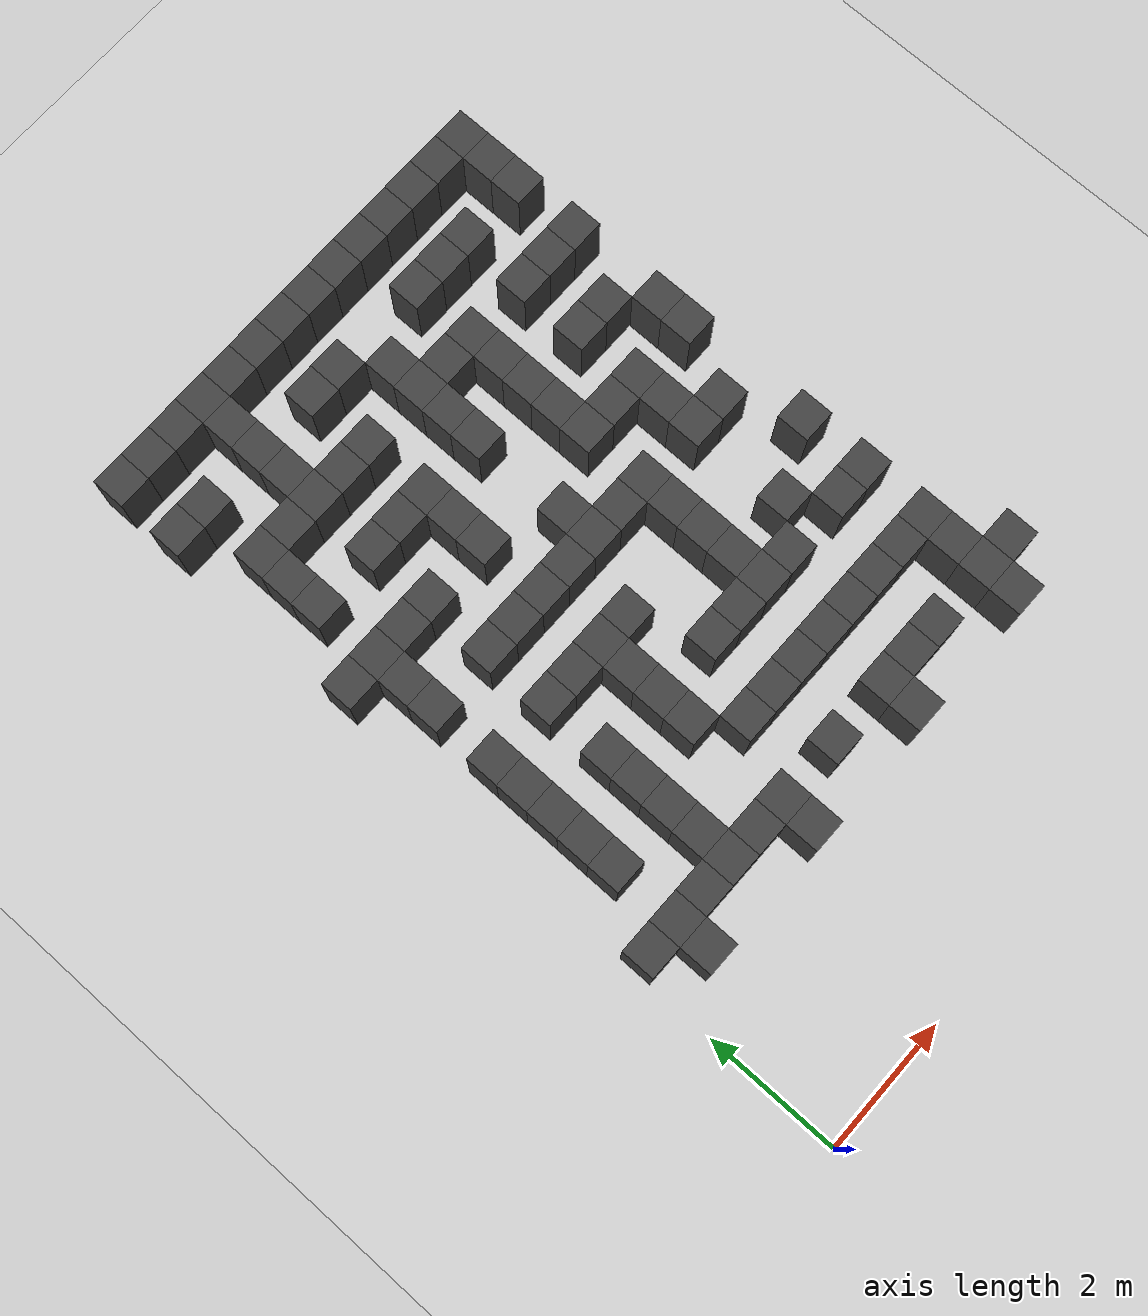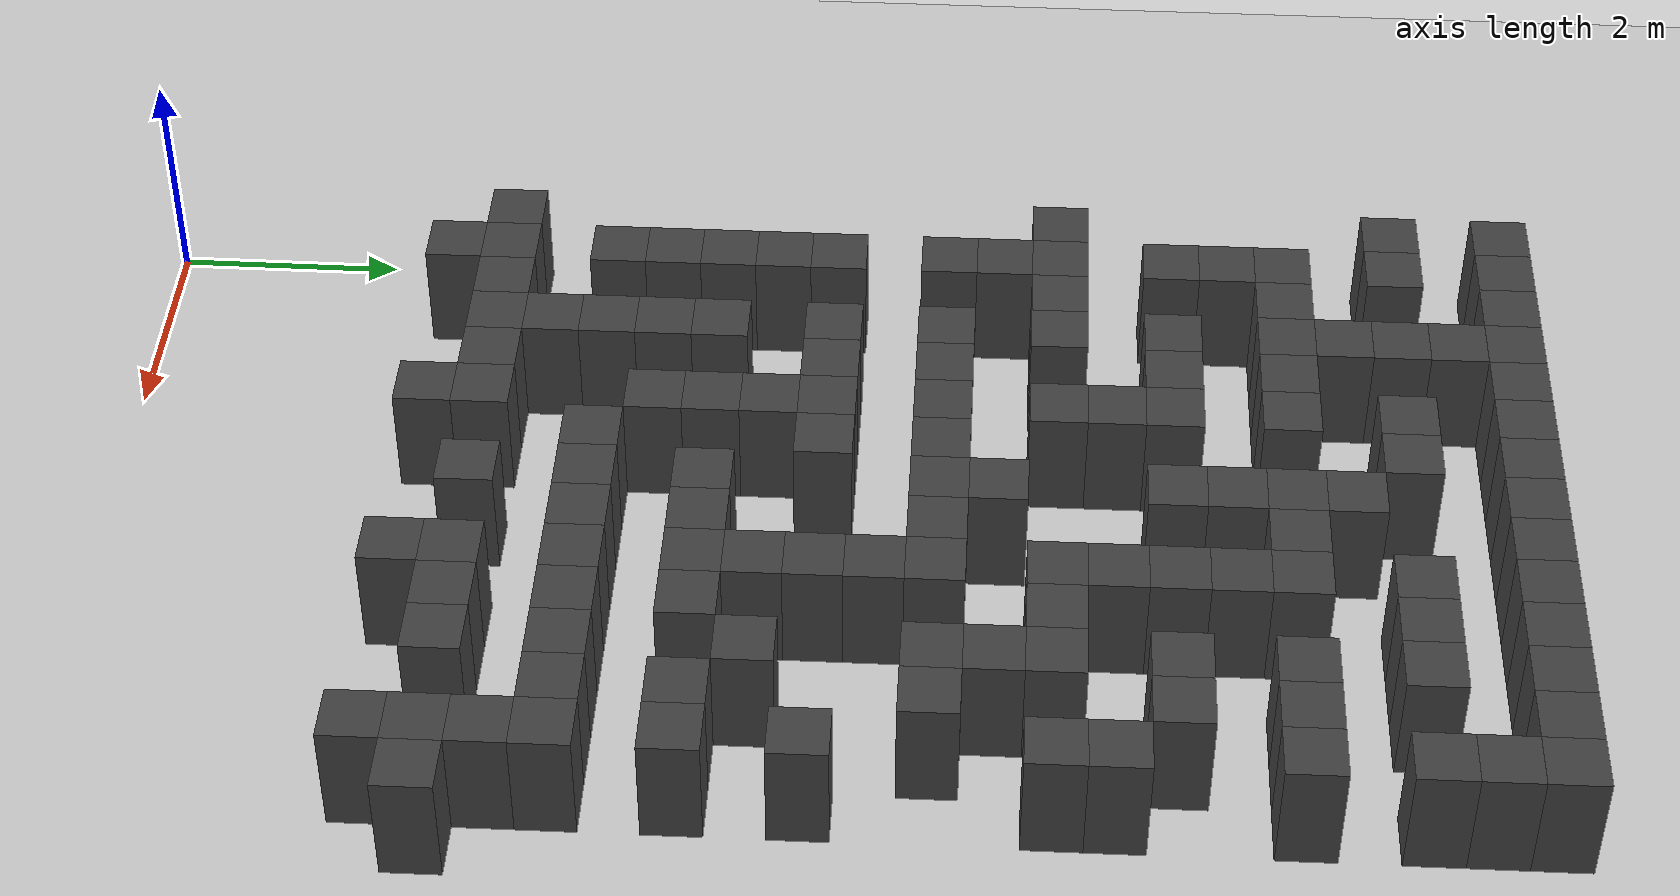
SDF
<sdf version="1.7">
 <world name="map_16884">
  <model name="ground_plane">
   <static>true</static>
   <link name="link">
    <collision name="collision">
     <geometry><plane><normal>0 0 1</normal><size>200 200</size></plane></geometry>
    </collision>
    <visual name="visual">
     <geometry><plane><normal>0 0 1</normal><size>200 200</size></plane></geometry>
     <material><ambient>0.8 0.8 0.8 1</ambient><diffuse>0.8 0.8 0.8 1</diffuse></material>
    </visual>
   </link>
  </model>
  <model name="maze_environment">
   <static>true</static>
   <link name="wall_25">
    <pose>0.250 12.250 0.500 0 0 0</pose>
    <collision name="col"><geometry><box><size>0.5 0.5 1.0</size></box></geometry></collision>
    <visual name="vis">
     <geometry><box><size>0.5 0.5 1.0</size></box></geometry>
     <material><ambient>0.15 0.15 0.15 1</ambient><diffuse>0.25 0.25 0.25 1</diffuse></material>
    </visual>
   </link>
   <link name="wall_26">
    <pose>0.750 12.250 0.500 0 0 0</pose>
    <collision name="col"><geometry><box><size>0.5 0.5 1.0</size></box></geometry></collision>
    <visual name="vis">
     <geometry><box><size>0.5 0.5 1.0</size></box></geometry>
     <material><ambient>0.15 0.15 0.15 1</ambient><diffuse>0.25 0.25 0.25 1</diffuse></material>
    </visual>
   </link>
   <link name="wall_27">
    <pose>1.250 12.250 0.500 0 0 0</pose>
    <collision name="col"><geometry><box><size>0.5 0.5 1.0</size></box></geometry></collision>
    <visual name="vis">
     <geometry><box><size>0.5 0.5 1.0</size></box></geometry>
     <material><ambient>0.15 0.15 0.15 1</ambient><diffuse>0.25 0.25 0.25 1</diffuse></material>
    </visual>
   </link>
   <link name="wall_28">
    <pose>1.750 12.250 0.500 0 0 0</pose>
    <collision name="col"><geometry><box><size>0.5 0.5 1.0</size></box></geometry></collision>
    <visual name="vis">
     <geometry><box><size>0.5 0.5 1.0</size></box></geometry>
     <material><ambient>0.15 0.15 0.15 1</ambient><diffuse>0.25 0.25 0.25 1</diffuse></material>
    </visual>
   </link>
   <link name="wall_29">
    <pose>2.250 12.250 0.500 0 0 0</pose>
    <collision name="col"><geometry><box><size>0.5 0.5 1.0</size></box></geometry></collision>
    <visual name="vis">
     <geometry><box><size>0.5 0.5 1.0</size></box></geometry>
     <material><ambient>0.15 0.15 0.15 1</ambient><diffuse>0.25 0.25 0.25 1</diffuse></material>
    </visual>
   </link>
   <link name="wall_30">
    <pose>2.750 12.250 0.500 0 0 0</pose>
    <collision name="col"><geometry><box><size>0.5 0.5 1.0</size></box></geometry></collision>
    <visual name="vis">
     <geometry><box><size>0.5 0.5 1.0</size></box></geometry>
     <material><ambient>0.15 0.15 0.15 1</ambient><diffuse>0.25 0.25 0.25 1</diffuse></material>
    </visual>
   </link>
   <link name="wall_31">
    <pose>3.250 12.250 0.500 0 0 0</pose>
    <collision name="col"><geometry><box><size>0.5 0.5 1.0</size></box></geometry></collision>
    <visual name="vis">
     <geometry><box><size>0.5 0.5 1.0</size></box></geometry>
     <material><ambient>0.15 0.15 0.15 1</ambient><diffuse>0.25 0.25 0.25 1</diffuse></material>
    </visual>
   </link>
   <link name="wall_32">
    <pose>3.750 12.250 0.500 0 0 0</pose>
    <collision name="col"><geometry><box><size>0.5 0.5 1.0</size></box></geometry></collision>
    <visual name="vis">
     <geometry><box><size>0.5 0.5 1.0</size></box></geometry>
     <material><ambient>0.15 0.15 0.15 1</ambient><diffuse>0.25 0.25 0.25 1</diffuse></material>
    </visual>
   </link>
   <link name="wall_33">
    <pose>4.250 12.250 0.500 0 0 0</pose>
    <collision name="col"><geometry><box><size>0.5 0.5 1.0</size></box></geometry></collision>
    <visual name="vis">
     <geometry><box><size>0.5 0.5 1.0</size></box></geometry>
     <material><ambient>0.15 0.15 0.15 1</ambient><diffuse>0.25 0.25 0.25 1</diffuse></material>
    </visual>
   </link>
   <link name="wall_34">
    <pose>4.750 12.250 0.500 0 0 0</pose>
    <collision name="col"><geometry><box><size>0.5 0.5 1.0</size></box></geometry></collision>
    <visual name="vis">
     <geometry><box><size>0.5 0.5 1.0</size></box></geometry>
     <material><ambient>0.15 0.15 0.15 1</ambient><diffuse>0.25 0.25 0.25 1</diffuse></material>
    </visual>
   </link>
   <link name="wall_35">
    <pose>5.250 12.250 0.500 0 0 0</pose>
    <collision name="col"><geometry><box><size>0.5 0.5 1.0</size></box></geometry></collision>
    <visual name="vis">
     <geometry><box><size>0.5 0.5 1.0</size></box></geometry>
     <material><ambient>0.15 0.15 0.15 1</ambient><diffuse>0.25 0.25 0.25 1</diffuse></material>
    </visual>
   </link>
   <link name="wall_36">
    <pose>5.750 12.250 0.500 0 0 0</pose>
    <collision name="col"><geometry><box><size>0.5 0.5 1.0</size></box></geometry></collision>
    <visual name="vis">
     <geometry><box><size>0.5 0.5 1.0</size></box></geometry>
     <material><ambient>0.15 0.15 0.15 1</ambient><diffuse>0.25 0.25 0.25 1</diffuse></material>
    </visual>
   </link>
   <link name="wall_37">
    <pose>6.250 12.250 0.500 0 0 0</pose>
    <collision name="col"><geometry><box><size>0.5 0.5 1.0</size></box></geometry></collision>
    <visual name="vis">
     <geometry><box><size>0.5 0.5 1.0</size></box></geometry>
     <material><ambient>0.15 0.15 0.15 1</ambient><diffuse>0.25 0.25 0.25 1</diffuse></material>
    </visual>
   </link>
   <link name="wall_38">
    <pose>6.750 12.250 0.500 0 0 0</pose>
    <collision name="col"><geometry><box><size>0.5 0.5 1.0</size></box></geometry></collision>
    <visual name="vis">
     <geometry><box><size>0.5 0.5 1.0</size></box></geometry>
     <material><ambient>0.15 0.15 0.15 1</ambient><diffuse>0.25 0.25 0.25 1</diffuse></material>
    </visual>
   </link>
   <link name="wall_53">
    <pose>1.750 11.750 0.500 0 0 0</pose>
    <collision name="col"><geometry><box><size>0.5 0.5 1.0</size></box></geometry></collision>
    <visual name="vis">
     <geometry><box><size>0.5 0.5 1.0</size></box></geometry>
     <material><ambient>0.15 0.15 0.15 1</ambient><diffuse>0.25 0.25 0.25 1</diffuse></material>
    </visual>
   </link>
   <link name="wall_54">
    <pose>6.750 11.750 0.500 0 0 0</pose>
    <collision name="col"><geometry><box><size>0.5 0.5 1.0</size></box></geometry></collision>
    <visual name="vis">
     <geometry><box><size>0.5 0.5 1.0</size></box></geometry>
     <material><ambient>0.15 0.15 0.15 1</ambient><diffuse>0.25 0.25 0.25 1</diffuse></material>
    </visual>
   </link>
   <link name="wall_77">
    <pose>0.250 11.250 0.500 0 0 0</pose>
    <collision name="col"><geometry><box><size>0.5 0.5 1.0</size></box></geometry></collision>
    <visual name="vis">
     <geometry><box><size>0.5 0.5 1.0</size></box></geometry>
     <material><ambient>0.15 0.15 0.15 1</ambient><diffuse>0.25 0.25 0.25 1</diffuse></material>
    </visual>
   </link>
   <link name="wall_78">
    <pose>0.750 11.250 0.500 0 0 0</pose>
    <collision name="col"><geometry><box><size>0.5 0.5 1.0</size></box></geometry></collision>
    <visual name="vis">
     <geometry><box><size>0.5 0.5 1.0</size></box></geometry>
     <material><ambient>0.15 0.15 0.15 1</ambient><diffuse>0.25 0.25 0.25 1</diffuse></material>
    </visual>
   </link>
   <link name="wall_79">
    <pose>1.750 11.250 0.500 0 0 0</pose>
    <collision name="col"><geometry><box><size>0.5 0.5 1.0</size></box></geometry></collision>
    <visual name="vis">
     <geometry><box><size>0.5 0.5 1.0</size></box></geometry>
     <material><ambient>0.15 0.15 0.15 1</ambient><diffuse>0.25 0.25 0.25 1</diffuse></material>
    </visual>
   </link>
   <link name="wall_80">
    <pose>2.750 11.250 0.500 0 0 0</pose>
    <collision name="col"><geometry><box><size>0.5 0.5 1.0</size></box></geometry></collision>
    <visual name="vis">
     <geometry><box><size>0.5 0.5 1.0</size></box></geometry>
     <material><ambient>0.15 0.15 0.15 1</ambient><diffuse>0.25 0.25 0.25 1</diffuse></material>
    </visual>
   </link>
   <link name="wall_81">
    <pose>3.250 11.250 0.500 0 0 0</pose>
    <collision name="col"><geometry><box><size>0.5 0.5 1.0</size></box></geometry></collision>
    <visual name="vis">
     <geometry><box><size>0.5 0.5 1.0</size></box></geometry>
     <material><ambient>0.15 0.15 0.15 1</ambient><diffuse>0.25 0.25 0.25 1</diffuse></material>
    </visual>
   </link>
   <link name="wall_82">
    <pose>4.750 11.250 0.500 0 0 0</pose>
    <collision name="col"><geometry><box><size>0.5 0.5 1.0</size></box></geometry></collision>
    <visual name="vis">
     <geometry><box><size>0.5 0.5 1.0</size></box></geometry>
     <material><ambient>0.15 0.15 0.15 1</ambient><diffuse>0.25 0.25 0.25 1</diffuse></material>
    </visual>
   </link>
   <link name="wall_83">
    <pose>5.250 11.250 0.500 0 0 0</pose>
    <collision name="col"><geometry><box><size>0.5 0.5 1.0</size></box></geometry></collision>
    <visual name="vis">
     <geometry><box><size>0.5 0.5 1.0</size></box></geometry>
     <material><ambient>0.15 0.15 0.15 1</ambient><diffuse>0.25 0.25 0.25 1</diffuse></material>
    </visual>
   </link>
   <link name="wall_84">
    <pose>5.750 11.250 0.500 0 0 0</pose>
    <collision name="col"><geometry><box><size>0.5 0.5 1.0</size></box></geometry></collision>
    <visual name="vis">
     <geometry><box><size>0.5 0.5 1.0</size></box></geometry>
     <material><ambient>0.15 0.15 0.15 1</ambient><diffuse>0.25 0.25 0.25 1</diffuse></material>
    </visual>
   </link>
   <link name="wall_85">
    <pose>6.750 11.250 0.500 0 0 0</pose>
    <collision name="col"><geometry><box><size>0.5 0.5 1.0</size></box></geometry></collision>
    <visual name="vis">
     <geometry><box><size>0.5 0.5 1.0</size></box></geometry>
     <material><ambient>0.15 0.15 0.15 1</ambient><diffuse>0.25 0.25 0.25 1</diffuse></material>
    </visual>
   </link>
   <link name="wall_102">
    <pose>1.750 10.750 0.500 0 0 0</pose>
    <collision name="col"><geometry><box><size>0.5 0.5 1.0</size></box></geometry></collision>
    <visual name="vis">
     <geometry><box><size>0.5 0.5 1.0</size></box></geometry>
     <material><ambient>0.15 0.15 0.15 1</ambient><diffuse>0.25 0.25 0.25 1</diffuse></material>
    </visual>
   </link>
   <link name="wall_103">
    <pose>3.750 10.750 0.500 0 0 0</pose>
    <collision name="col"><geometry><box><size>0.5 0.5 1.0</size></box></geometry></collision>
    <visual name="vis">
     <geometry><box><size>0.5 0.5 1.0</size></box></geometry>
     <material><ambient>0.15 0.15 0.15 1</ambient><diffuse>0.25 0.25 0.25 1</diffuse></material>
    </visual>
   </link>
   <link name="wall_123">
    <pose>0.750 10.250 0.500 0 0 0</pose>
    <collision name="col"><geometry><box><size>0.5 0.5 1.0</size></box></geometry></collision>
    <visual name="vis">
     <geometry><box><size>0.5 0.5 1.0</size></box></geometry>
     <material><ambient>0.15 0.15 0.15 1</ambient><diffuse>0.25 0.25 0.25 1</diffuse></material>
    </visual>
   </link>
   <link name="wall_124">
    <pose>1.250 10.250 0.500 0 0 0</pose>
    <collision name="col"><geometry><box><size>0.5 0.5 1.0</size></box></geometry></collision>
    <visual name="vis">
     <geometry><box><size>0.5 0.5 1.0</size></box></geometry>
     <material><ambient>0.15 0.15 0.15 1</ambient><diffuse>0.25 0.25 0.25 1</diffuse></material>
    </visual>
   </link>
   <link name="wall_125">
    <pose>1.750 10.250 0.500 0 0 0</pose>
    <collision name="col"><geometry><box><size>0.5 0.5 1.0</size></box></geometry></collision>
    <visual name="vis">
     <geometry><box><size>0.5 0.5 1.0</size></box></geometry>
     <material><ambient>0.15 0.15 0.15 1</ambient><diffuse>0.25 0.25 0.25 1</diffuse></material>
    </visual>
   </link>
   <link name="wall_126">
    <pose>2.250 10.250 0.500 0 0 0</pose>
    <collision name="col"><geometry><box><size>0.5 0.5 1.0</size></box></geometry></collision>
    <visual name="vis">
     <geometry><box><size>0.5 0.5 1.0</size></box></geometry>
     <material><ambient>0.15 0.15 0.15 1</ambient><diffuse>0.25 0.25 0.25 1</diffuse></material>
    </visual>
   </link>
   <link name="wall_127">
    <pose>2.750 10.250 0.500 0 0 0</pose>
    <collision name="col"><geometry><box><size>0.5 0.5 1.0</size></box></geometry></collision>
    <visual name="vis">
     <geometry><box><size>0.5 0.5 1.0</size></box></geometry>
     <material><ambient>0.15 0.15 0.15 1</ambient><diffuse>0.25 0.25 0.25 1</diffuse></material>
    </visual>
   </link>
   <link name="wall_128">
    <pose>3.750 10.250 0.500 0 0 0</pose>
    <collision name="col"><geometry><box><size>0.5 0.5 1.0</size></box></geometry></collision>
    <visual name="vis">
     <geometry><box><size>0.5 0.5 1.0</size></box></geometry>
     <material><ambient>0.15 0.15 0.15 1</ambient><diffuse>0.25 0.25 0.25 1</diffuse></material>
    </visual>
   </link>
   <link name="wall_129">
    <pose>4.250 10.250 0.500 0 0 0</pose>
    <collision name="col"><geometry><box><size>0.5 0.5 1.0</size></box></geometry></collision>
    <visual name="vis">
     <geometry><box><size>0.5 0.5 1.0</size></box></geometry>
     <material><ambient>0.15 0.15 0.15 1</ambient><diffuse>0.25 0.25 0.25 1</diffuse></material>
    </visual>
   </link>
   <link name="wall_130">
    <pose>4.750 10.250 0.500 0 0 0</pose>
    <collision name="col"><geometry><box><size>0.5 0.5 1.0</size></box></geometry></collision>
    <visual name="vis">
     <geometry><box><size>0.5 0.5 1.0</size></box></geometry>
     <material><ambient>0.15 0.15 0.15 1</ambient><diffuse>0.25 0.25 0.25 1</diffuse></material>
    </visual>
   </link>
   <link name="wall_131">
    <pose>5.750 10.250 0.500 0 0 0</pose>
    <collision name="col"><geometry><box><size>0.5 0.5 1.0</size></box></geometry></collision>
    <visual name="vis">
     <geometry><box><size>0.5 0.5 1.0</size></box></geometry>
     <material><ambient>0.15 0.15 0.15 1</ambient><diffuse>0.25 0.25 0.25 1</diffuse></material>
    </visual>
   </link>
   <link name="wall_132">
    <pose>6.250 10.250 0.500 0 0 0</pose>
    <collision name="col"><geometry><box><size>0.5 0.5 1.0</size></box></geometry></collision>
    <visual name="vis">
     <geometry><box><size>0.5 0.5 1.0</size></box></geometry>
     <material><ambient>0.15 0.15 0.15 1</ambient><diffuse>0.25 0.25 0.25 1</diffuse></material>
    </visual>
   </link>
   <link name="wall_133">
    <pose>6.750 10.250 0.500 0 0 0</pose>
    <collision name="col"><geometry><box><size>0.5 0.5 1.0</size></box></geometry></collision>
    <visual name="vis">
     <geometry><box><size>0.5 0.5 1.0</size></box></geometry>
     <material><ambient>0.15 0.15 0.15 1</ambient><diffuse>0.25 0.25 0.25 1</diffuse></material>
    </visual>
   </link>
   <link name="wall_152">
    <pose>0.750 9.750 0.500 0 0 0</pose>
    <collision name="col"><geometry><box><size>0.5 0.5 1.0</size></box></geometry></collision>
    <visual name="vis">
     <geometry><box><size>0.5 0.5 1.0</size></box></geometry>
     <material><ambient>0.15 0.15 0.15 1</ambient><diffuse>0.25 0.25 0.25 1</diffuse></material>
    </visual>
   </link>
   <link name="wall_153">
    <pose>3.750 9.750 0.500 0 0 0</pose>
    <collision name="col"><geometry><box><size>0.5 0.5 1.0</size></box></geometry></collision>
    <visual name="vis">
     <geometry><box><size>0.5 0.5 1.0</size></box></geometry>
     <material><ambient>0.15 0.15 0.15 1</ambient><diffuse>0.25 0.25 0.25 1</diffuse></material>
    </visual>
   </link>
   <link name="wall_154">
    <pose>4.750 9.750 0.500 0 0 0</pose>
    <collision name="col"><geometry><box><size>0.5 0.5 1.0</size></box></geometry></collision>
    <visual name="vis">
     <geometry><box><size>0.5 0.5 1.0</size></box></geometry>
     <material><ambient>0.15 0.15 0.15 1</ambient><diffuse>0.25 0.25 0.25 1</diffuse></material>
    </visual>
   </link>
   <link name="wall_176">
    <pose>0.750 9.250 0.500 0 0 0</pose>
    <collision name="col"><geometry><box><size>0.5 0.5 1.0</size></box></geometry></collision>
    <visual name="vis">
     <geometry><box><size>0.5 0.5 1.0</size></box></geometry>
     <material><ambient>0.15 0.15 0.15 1</ambient><diffuse>0.25 0.25 0.25 1</diffuse></material>
    </visual>
   </link>
   <link name="wall_177">
    <pose>1.750 9.250 0.500 0 0 0</pose>
    <collision name="col"><geometry><box><size>0.5 0.5 1.0</size></box></geometry></collision>
    <visual name="vis">
     <geometry><box><size>0.5 0.5 1.0</size></box></geometry>
     <material><ambient>0.15 0.15 0.15 1</ambient><diffuse>0.25 0.25 0.25 1</diffuse></material>
    </visual>
   </link>
   <link name="wall_178">
    <pose>2.250 9.250 0.500 0 0 0</pose>
    <collision name="col"><geometry><box><size>0.5 0.5 1.0</size></box></geometry></collision>
    <visual name="vis">
     <geometry><box><size>0.5 0.5 1.0</size></box></geometry>
     <material><ambient>0.15 0.15 0.15 1</ambient><diffuse>0.25 0.25 0.25 1</diffuse></material>
    </visual>
   </link>
   <link name="wall_179">
    <pose>2.750 9.250 0.500 0 0 0</pose>
    <collision name="col"><geometry><box><size>0.5 0.5 1.0</size></box></geometry></collision>
    <visual name="vis">
     <geometry><box><size>0.5 0.5 1.0</size></box></geometry>
     <material><ambient>0.15 0.15 0.15 1</ambient><diffuse>0.25 0.25 0.25 1</diffuse></material>
    </visual>
   </link>
   <link name="wall_180">
    <pose>3.750 9.250 0.500 0 0 0</pose>
    <collision name="col"><geometry><box><size>0.5 0.5 1.0</size></box></geometry></collision>
    <visual name="vis">
     <geometry><box><size>0.5 0.5 1.0</size></box></geometry>
     <material><ambient>0.15 0.15 0.15 1</ambient><diffuse>0.25 0.25 0.25 1</diffuse></material>
    </visual>
   </link>
   <link name="wall_181">
    <pose>4.750 9.250 0.500 0 0 0</pose>
    <collision name="col"><geometry><box><size>0.5 0.5 1.0</size></box></geometry></collision>
    <visual name="vis">
     <geometry><box><size>0.5 0.5 1.0</size></box></geometry>
     <material><ambient>0.15 0.15 0.15 1</ambient><diffuse>0.25 0.25 0.25 1</diffuse></material>
    </visual>
   </link>
   <link name="wall_182">
    <pose>5.750 9.250 0.500 0 0 0</pose>
    <collision name="col"><geometry><box><size>0.5 0.5 1.0</size></box></geometry></collision>
    <visual name="vis">
     <geometry><box><size>0.5 0.5 1.0</size></box></geometry>
     <material><ambient>0.15 0.15 0.15 1</ambient><diffuse>0.25 0.25 0.25 1</diffuse></material>
    </visual>
   </link>
   <link name="wall_183">
    <pose>6.250 9.250 0.500 0 0 0</pose>
    <collision name="col"><geometry><box><size>0.5 0.5 1.0</size></box></geometry></collision>
    <visual name="vis">
     <geometry><box><size>0.5 0.5 1.0</size></box></geometry>
     <material><ambient>0.15 0.15 0.15 1</ambient><diffuse>0.25 0.25 0.25 1</diffuse></material>
    </visual>
   </link>
   <link name="wall_200">
    <pose>2.750 8.750 0.500 0 0 0</pose>
    <collision name="col"><geometry><box><size>0.5 0.5 1.0</size></box></geometry></collision>
    <visual name="vis">
     <geometry><box><size>0.5 0.5 1.0</size></box></geometry>
     <material><ambient>0.15 0.15 0.15 1</ambient><diffuse>0.25 0.25 0.25 1</diffuse></material>
    </visual>
   </link>
   <link name="wall_201">
    <pose>4.750 8.750 0.500 0 0 0</pose>
    <collision name="col"><geometry><box><size>0.5 0.5 1.0</size></box></geometry></collision>
    <visual name="vis">
     <geometry><box><size>0.5 0.5 1.0</size></box></geometry>
     <material><ambient>0.15 0.15 0.15 1</ambient><diffuse>0.25 0.25 0.25 1</diffuse></material>
    </visual>
   </link>
   <link name="wall_202">
    <pose>6.750 8.750 0.500 0 0 0</pose>
    <collision name="col"><geometry><box><size>0.5 0.5 1.0</size></box></geometry></collision>
    <visual name="vis">
     <geometry><box><size>0.5 0.5 1.0</size></box></geometry>
     <material><ambient>0.15 0.15 0.15 1</ambient><diffuse>0.25 0.25 0.25 1</diffuse></material>
    </visual>
   </link>
   <link name="wall_225">
    <pose>0.250 8.250 0.500 0 0 0</pose>
    <collision name="col"><geometry><box><size>0.5 0.5 1.0</size></box></geometry></collision>
    <visual name="vis">
     <geometry><box><size>0.5 0.5 1.0</size></box></geometry>
     <material><ambient>0.15 0.15 0.15 1</ambient><diffuse>0.25 0.25 0.25 1</diffuse></material>
    </visual>
   </link>
   <link name="wall_226">
    <pose>0.750 8.250 0.500 0 0 0</pose>
    <collision name="col"><geometry><box><size>0.5 0.5 1.0</size></box></geometry></collision>
    <visual name="vis">
     <geometry><box><size>0.5 0.5 1.0</size></box></geometry>
     <material><ambient>0.15 0.15 0.15 1</ambient><diffuse>0.25 0.25 0.25 1</diffuse></material>
    </visual>
   </link>
   <link name="wall_227">
    <pose>1.250 8.250 0.500 0 0 0</pose>
    <collision name="col"><geometry><box><size>0.5 0.5 1.0</size></box></geometry></collision>
    <visual name="vis">
     <geometry><box><size>0.5 0.5 1.0</size></box></geometry>
     <material><ambient>0.15 0.15 0.15 1</ambient><diffuse>0.25 0.25 0.25 1</diffuse></material>
    </visual>
   </link>
   <link name="wall_228">
    <pose>1.750 8.250 0.500 0 0 0</pose>
    <collision name="col"><geometry><box><size>0.5 0.5 1.0</size></box></geometry></collision>
    <visual name="vis">
     <geometry><box><size>0.5 0.5 1.0</size></box></geometry>
     <material><ambient>0.15 0.15 0.15 1</ambient><diffuse>0.25 0.25 0.25 1</diffuse></material>
    </visual>
   </link>
   <link name="wall_229">
    <pose>2.750 8.250 0.500 0 0 0</pose>
    <collision name="col"><geometry><box><size>0.5 0.5 1.0</size></box></geometry></collision>
    <visual name="vis">
     <geometry><box><size>0.5 0.5 1.0</size></box></geometry>
     <material><ambient>0.15 0.15 0.15 1</ambient><diffuse>0.25 0.25 0.25 1</diffuse></material>
    </visual>
   </link>
   <link name="wall_230">
    <pose>4.750 8.250 0.500 0 0 0</pose>
    <collision name="col"><geometry><box><size>0.5 0.5 1.0</size></box></geometry></collision>
    <visual name="vis">
     <geometry><box><size>0.5 0.5 1.0</size></box></geometry>
     <material><ambient>0.15 0.15 0.15 1</ambient><diffuse>0.25 0.25 0.25 1</diffuse></material>
    </visual>
   </link>
   <link name="wall_231">
    <pose>5.250 8.250 0.500 0 0 0</pose>
    <collision name="col"><geometry><box><size>0.5 0.5 1.0</size></box></geometry></collision>
    <visual name="vis">
     <geometry><box><size>0.5 0.5 1.0</size></box></geometry>
     <material><ambient>0.15 0.15 0.15 1</ambient><diffuse>0.25 0.25 0.25 1</diffuse></material>
    </visual>
   </link>
   <link name="wall_232">
    <pose>5.750 8.250 0.500 0 0 0</pose>
    <collision name="col"><geometry><box><size>0.5 0.5 1.0</size></box></geometry></collision>
    <visual name="vis">
     <geometry><box><size>0.5 0.5 1.0</size></box></geometry>
     <material><ambient>0.15 0.15 0.15 1</ambient><diffuse>0.25 0.25 0.25 1</diffuse></material>
    </visual>
   </link>
   <link name="wall_233">
    <pose>6.750 8.250 0.500 0 0 0</pose>
    <collision name="col"><geometry><box><size>0.5 0.5 1.0</size></box></geometry></collision>
    <visual name="vis">
     <geometry><box><size>0.5 0.5 1.0</size></box></geometry>
     <material><ambient>0.15 0.15 0.15 1</ambient><diffuse>0.25 0.25 0.25 1</diffuse></material>
    </visual>
   </link>
   <link name="wall_248">
    <pose>0.750 7.750 0.500 0 0 0</pose>
    <collision name="col"><geometry><box><size>0.5 0.5 1.0</size></box></geometry></collision>
    <visual name="vis">
     <geometry><box><size>0.5 0.5 1.0</size></box></geometry>
     <material><ambient>0.15 0.15 0.15 1</ambient><diffuse>0.25 0.25 0.25 1</diffuse></material>
    </visual>
   </link>
   <link name="wall_249">
    <pose>3.750 7.750 0.500 0 0 0</pose>
    <collision name="col"><geometry><box><size>0.5 0.5 1.0</size></box></geometry></collision>
    <visual name="vis">
     <geometry><box><size>0.5 0.5 1.0</size></box></geometry>
     <material><ambient>0.15 0.15 0.15 1</ambient><diffuse>0.25 0.25 0.25 1</diffuse></material>
    </visual>
   </link>
   <link name="wall_250">
    <pose>5.750 7.750 0.500 0 0 0</pose>
    <collision name="col"><geometry><box><size>0.5 0.5 1.0</size></box></geometry></collision>
    <visual name="vis">
     <geometry><box><size>0.5 0.5 1.0</size></box></geometry>
     <material><ambient>0.15 0.15 0.15 1</ambient><diffuse>0.25 0.25 0.25 1</diffuse></material>
    </visual>
   </link>
   <link name="wall_273">
    <pose>0.750 7.250 0.500 0 0 0</pose>
    <collision name="col"><geometry><box><size>0.5 0.5 1.0</size></box></geometry></collision>
    <visual name="vis">
     <geometry><box><size>0.5 0.5 1.0</size></box></geometry>
     <material><ambient>0.15 0.15 0.15 1</ambient><diffuse>0.25 0.25 0.25 1</diffuse></material>
    </visual>
   </link>
   <link name="wall_274">
    <pose>1.750 7.250 0.500 0 0 0</pose>
    <collision name="col"><geometry><box><size>0.5 0.5 1.0</size></box></geometry></collision>
    <visual name="vis">
     <geometry><box><size>0.5 0.5 1.0</size></box></geometry>
     <material><ambient>0.15 0.15 0.15 1</ambient><diffuse>0.25 0.25 0.25 1</diffuse></material>
    </visual>
   </link>
   <link name="wall_275">
    <pose>2.250 7.250 0.500 0 0 0</pose>
    <collision name="col"><geometry><box><size>0.5 0.5 1.0</size></box></geometry></collision>
    <visual name="vis">
     <geometry><box><size>0.5 0.5 1.0</size></box></geometry>
     <material><ambient>0.15 0.15 0.15 1</ambient><diffuse>0.25 0.25 0.25 1</diffuse></material>
    </visual>
   </link>
   <link name="wall_276">
    <pose>2.750 7.250 0.500 0 0 0</pose>
    <collision name="col"><geometry><box><size>0.5 0.5 1.0</size></box></geometry></collision>
    <visual name="vis">
     <geometry><box><size>0.5 0.5 1.0</size></box></geometry>
     <material><ambient>0.15 0.15 0.15 1</ambient><diffuse>0.25 0.25 0.25 1</diffuse></material>
    </visual>
   </link>
   <link name="wall_277">
    <pose>3.250 7.250 0.500 0 0 0</pose>
    <collision name="col"><geometry><box><size>0.5 0.5 1.0</size></box></geometry></collision>
    <visual name="vis">
     <geometry><box><size>0.5 0.5 1.0</size></box></geometry>
     <material><ambient>0.15 0.15 0.15 1</ambient><diffuse>0.25 0.25 0.25 1</diffuse></material>
    </visual>
   </link>
   <link name="wall_278">
    <pose>3.750 7.250 0.500 0 0 0</pose>
    <collision name="col"><geometry><box><size>0.5 0.5 1.0</size></box></geometry></collision>
    <visual name="vis">
     <geometry><box><size>0.5 0.5 1.0</size></box></geometry>
     <material><ambient>0.15 0.15 0.15 1</ambient><diffuse>0.25 0.25 0.25 1</diffuse></material>
    </visual>
   </link>
   <link name="wall_279">
    <pose>4.250 7.250 0.500 0 0 0</pose>
    <collision name="col"><geometry><box><size>0.5 0.5 1.0</size></box></geometry></collision>
    <visual name="vis">
     <geometry><box><size>0.5 0.5 1.0</size></box></geometry>
     <material><ambient>0.15 0.15 0.15 1</ambient><diffuse>0.25 0.25 0.25 1</diffuse></material>
    </visual>
   </link>
   <link name="wall_280">
    <pose>4.750 7.250 0.500 0 0 0</pose>
    <collision name="col"><geometry><box><size>0.5 0.5 1.0</size></box></geometry></collision>
    <visual name="vis">
     <geometry><box><size>0.5 0.5 1.0</size></box></geometry>
     <material><ambient>0.15 0.15 0.15 1</ambient><diffuse>0.25 0.25 0.25 1</diffuse></material>
    </visual>
   </link>
   <link name="wall_281">
    <pose>5.750 7.250 0.500 0 0 0</pose>
    <collision name="col"><geometry><box><size>0.5 0.5 1.0</size></box></geometry></collision>
    <visual name="vis">
     <geometry><box><size>0.5 0.5 1.0</size></box></geometry>
     <material><ambient>0.15 0.15 0.15 1</ambient><diffuse>0.25 0.25 0.25 1</diffuse></material>
    </visual>
   </link>
   <link name="wall_282">
    <pose>6.250 7.250 0.500 0 0 0</pose>
    <collision name="col"><geometry><box><size>0.5 0.5 1.0</size></box></geometry></collision>
    <visual name="vis">
     <geometry><box><size>0.5 0.5 1.0</size></box></geometry>
     <material><ambient>0.15 0.15 0.15 1</ambient><diffuse>0.25 0.25 0.25 1</diffuse></material>
    </visual>
   </link>
   <link name="wall_300">
    <pose>4.750 6.750 0.500 0 0 0</pose>
    <collision name="col"><geometry><box><size>0.5 0.5 1.0</size></box></geometry></collision>
    <visual name="vis">
     <geometry><box><size>0.5 0.5 1.0</size></box></geometry>
     <material><ambient>0.15 0.15 0.15 1</ambient><diffuse>0.25 0.25 0.25 1</diffuse></material>
    </visual>
   </link>
   <link name="wall_320">
    <pose>0.750 6.250 0.500 0 0 0</pose>
    <collision name="col"><geometry><box><size>0.5 0.5 1.0</size></box></geometry></collision>
    <visual name="vis">
     <geometry><box><size>0.5 0.5 1.0</size></box></geometry>
     <material><ambient>0.15 0.15 0.15 1</ambient><diffuse>0.25 0.25 0.25 1</diffuse></material>
    </visual>
   </link>
   <link name="wall_321">
    <pose>1.750 6.250 0.500 0 0 0</pose>
    <collision name="col"><geometry><box><size>0.5 0.5 1.0</size></box></geometry></collision>
    <visual name="vis">
     <geometry><box><size>0.5 0.5 1.0</size></box></geometry>
     <material><ambient>0.15 0.15 0.15 1</ambient><diffuse>0.25 0.25 0.25 1</diffuse></material>
    </visual>
   </link>
   <link name="wall_322">
    <pose>2.250 6.250 0.500 0 0 0</pose>
    <collision name="col"><geometry><box><size>0.5 0.5 1.0</size></box></geometry></collision>
    <visual name="vis">
     <geometry><box><size>0.5 0.5 1.0</size></box></geometry>
     <material><ambient>0.15 0.15 0.15 1</ambient><diffuse>0.25 0.25 0.25 1</diffuse></material>
    </visual>
   </link>
   <link name="wall_323">
    <pose>2.750 6.250 0.500 0 0 0</pose>
    <collision name="col"><geometry><box><size>0.5 0.5 1.0</size></box></geometry></collision>
    <visual name="vis">
     <geometry><box><size>0.5 0.5 1.0</size></box></geometry>
     <material><ambient>0.15 0.15 0.15 1</ambient><diffuse>0.25 0.25 0.25 1</diffuse></material>
    </visual>
   </link>
   <link name="wall_324">
    <pose>3.250 6.250 0.500 0 0 0</pose>
    <collision name="col"><geometry><box><size>0.5 0.5 1.0</size></box></geometry></collision>
    <visual name="vis">
     <geometry><box><size>0.5 0.5 1.0</size></box></geometry>
     <material><ambient>0.15 0.15 0.15 1</ambient><diffuse>0.25 0.25 0.25 1</diffuse></material>
    </visual>
   </link>
   <link name="wall_325">
    <pose>4.750 6.250 0.500 0 0 0</pose>
    <collision name="col"><geometry><box><size>0.5 0.5 1.0</size></box></geometry></collision>
    <visual name="vis">
     <geometry><box><size>0.5 0.5 1.0</size></box></geometry>
     <material><ambient>0.15 0.15 0.15 1</ambient><diffuse>0.25 0.25 0.25 1</diffuse></material>
    </visual>
   </link>
   <link name="wall_326">
    <pose>6.750 6.250 0.500 0 0 0</pose>
    <collision name="col"><geometry><box><size>0.5 0.5 1.0</size></box></geometry></collision>
    <visual name="vis">
     <geometry><box><size>0.5 0.5 1.0</size></box></geometry>
     <material><ambient>0.15 0.15 0.15 1</ambient><diffuse>0.25 0.25 0.25 1</diffuse></material>
    </visual>
   </link>
   <link name="wall_343">
    <pose>0.750 5.750 0.500 0 0 0</pose>
    <collision name="col"><geometry><box><size>0.5 0.5 1.0</size></box></geometry></collision>
    <visual name="vis">
     <geometry><box><size>0.5 0.5 1.0</size></box></geometry>
     <material><ambient>0.15 0.15 0.15 1</ambient><diffuse>0.25 0.25 0.25 1</diffuse></material>
    </visual>
   </link>
   <link name="wall_344">
    <pose>2.750 5.750 0.500 0 0 0</pose>
    <collision name="col"><geometry><box><size>0.5 0.5 1.0</size></box></geometry></collision>
    <visual name="vis">
     <geometry><box><size>0.5 0.5 1.0</size></box></geometry>
     <material><ambient>0.15 0.15 0.15 1</ambient><diffuse>0.25 0.25 0.25 1</diffuse></material>
    </visual>
   </link>
   <link name="wall_345">
    <pose>4.750 5.750 0.500 0 0 0</pose>
    <collision name="col"><geometry><box><size>0.5 0.5 1.0</size></box></geometry></collision>
    <visual name="vis">
     <geometry><box><size>0.5 0.5 1.0</size></box></geometry>
     <material><ambient>0.15 0.15 0.15 1</ambient><diffuse>0.25 0.25 0.25 1</diffuse></material>
    </visual>
   </link>
   <link name="wall_346">
    <pose>5.750 5.750 0.500 0 0 0</pose>
    <collision name="col"><geometry><box><size>0.5 0.5 1.0</size></box></geometry></collision>
    <visual name="vis">
     <geometry><box><size>0.5 0.5 1.0</size></box></geometry>
     <material><ambient>0.15 0.15 0.15 1</ambient><diffuse>0.25 0.25 0.25 1</diffuse></material>
    </visual>
   </link>
   <link name="wall_369">
    <pose>0.750 5.250 0.500 0 0 0</pose>
    <collision name="col"><geometry><box><size>0.5 0.5 1.0</size></box></geometry></collision>
    <visual name="vis">
     <geometry><box><size>0.5 0.5 1.0</size></box></geometry>
     <material><ambient>0.15 0.15 0.15 1</ambient><diffuse>0.25 0.25 0.25 1</diffuse></material>
    </visual>
   </link>
   <link name="wall_370">
    <pose>1.750 5.250 0.500 0 0 0</pose>
    <collision name="col"><geometry><box><size>0.5 0.5 1.0</size></box></geometry></collision>
    <visual name="vis">
     <geometry><box><size>0.5 0.5 1.0</size></box></geometry>
     <material><ambient>0.15 0.15 0.15 1</ambient><diffuse>0.25 0.25 0.25 1</diffuse></material>
    </visual>
   </link>
   <link name="wall_371">
    <pose>2.750 5.250 0.500 0 0 0</pose>
    <collision name="col"><geometry><box><size>0.5 0.5 1.0</size></box></geometry></collision>
    <visual name="vis">
     <geometry><box><size>0.5 0.5 1.0</size></box></geometry>
     <material><ambient>0.15 0.15 0.15 1</ambient><diffuse>0.25 0.25 0.25 1</diffuse></material>
    </visual>
   </link>
   <link name="wall_372">
    <pose>3.750 5.250 0.500 0 0 0</pose>
    <collision name="col"><geometry><box><size>0.5 0.5 1.0</size></box></geometry></collision>
    <visual name="vis">
     <geometry><box><size>0.5 0.5 1.0</size></box></geometry>
     <material><ambient>0.15 0.15 0.15 1</ambient><diffuse>0.25 0.25 0.25 1</diffuse></material>
    </visual>
   </link>
   <link name="wall_373">
    <pose>4.250 5.250 0.500 0 0 0</pose>
    <collision name="col"><geometry><box><size>0.5 0.5 1.0</size></box></geometry></collision>
    <visual name="vis">
     <geometry><box><size>0.5 0.5 1.0</size></box></geometry>
     <material><ambient>0.15 0.15 0.15 1</ambient><diffuse>0.25 0.25 0.25 1</diffuse></material>
    </visual>
   </link>
   <link name="wall_374">
    <pose>4.750 5.250 0.500 0 0 0</pose>
    <collision name="col"><geometry><box><size>0.5 0.5 1.0</size></box></geometry></collision>
    <visual name="vis">
     <geometry><box><size>0.5 0.5 1.0</size></box></geometry>
     <material><ambient>0.15 0.15 0.15 1</ambient><diffuse>0.25 0.25 0.25 1</diffuse></material>
    </visual>
   </link>
   <link name="wall_375">
    <pose>5.250 5.250 0.500 0 0 0</pose>
    <collision name="col"><geometry><box><size>0.5 0.5 1.0</size></box></geometry></collision>
    <visual name="vis">
     <geometry><box><size>0.5 0.5 1.0</size></box></geometry>
     <material><ambient>0.15 0.15 0.15 1</ambient><diffuse>0.25 0.25 0.25 1</diffuse></material>
    </visual>
   </link>
   <link name="wall_376">
    <pose>6.250 5.250 0.500 0 0 0</pose>
    <collision name="col"><geometry><box><size>0.5 0.5 1.0</size></box></geometry></collision>
    <visual name="vis">
     <geometry><box><size>0.5 0.5 1.0</size></box></geometry>
     <material><ambient>0.15 0.15 0.15 1</ambient><diffuse>0.25 0.25 0.25 1</diffuse></material>
    </visual>
   </link>
   <link name="wall_377">
    <pose>6.750 5.250 0.500 0 0 0</pose>
    <collision name="col"><geometry><box><size>0.5 0.5 1.0</size></box></geometry></collision>
    <visual name="vis">
     <geometry><box><size>0.5 0.5 1.0</size></box></geometry>
     <material><ambient>0.15 0.15 0.15 1</ambient><diffuse>0.25 0.25 0.25 1</diffuse></material>
    </visual>
   </link>
   <link name="wall_392">
    <pose>0.750 4.750 0.500 0 0 0</pose>
    <collision name="col"><geometry><box><size>0.5 0.5 1.0</size></box></geometry></collision>
    <visual name="vis">
     <geometry><box><size>0.5 0.5 1.0</size></box></geometry>
     <material><ambient>0.15 0.15 0.15 1</ambient><diffuse>0.25 0.25 0.25 1</diffuse></material>
    </visual>
   </link>
   <link name="wall_393">
    <pose>1.750 4.750 0.500 0 0 0</pose>
    <collision name="col"><geometry><box><size>0.5 0.5 1.0</size></box></geometry></collision>
    <visual name="vis">
     <geometry><box><size>0.5 0.5 1.0</size></box></geometry>
     <material><ambient>0.15 0.15 0.15 1</ambient><diffuse>0.25 0.25 0.25 1</diffuse></material>
    </visual>
   </link>
   <link name="wall_394">
    <pose>2.750 4.750 0.500 0 0 0</pose>
    <collision name="col"><geometry><box><size>0.5 0.5 1.0</size></box></geometry></collision>
    <visual name="vis">
     <geometry><box><size>0.5 0.5 1.0</size></box></geometry>
     <material><ambient>0.15 0.15 0.15 1</ambient><diffuse>0.25 0.25 0.25 1</diffuse></material>
    </visual>
   </link>
   <link name="wall_417">
    <pose>0.750 4.250 0.500 0 0 0</pose>
    <collision name="col"><geometry><box><size>0.5 0.5 1.0</size></box></geometry></collision>
    <visual name="vis">
     <geometry><box><size>0.5 0.5 1.0</size></box></geometry>
     <material><ambient>0.15 0.15 0.15 1</ambient><diffuse>0.25 0.25 0.25 1</diffuse></material>
    </visual>
   </link>
   <link name="wall_418">
    <pose>1.750 4.250 0.500 0 0 0</pose>
    <collision name="col"><geometry><box><size>0.5 0.5 1.0</size></box></geometry></collision>
    <visual name="vis">
     <geometry><box><size>0.5 0.5 1.0</size></box></geometry>
     <material><ambient>0.15 0.15 0.15 1</ambient><diffuse>0.25 0.25 0.25 1</diffuse></material>
    </visual>
   </link>
   <link name="wall_419">
    <pose>3.250 4.250 0.500 0 0 0</pose>
    <collision name="col"><geometry><box><size>0.5 0.5 1.0</size></box></geometry></collision>
    <visual name="vis">
     <geometry><box><size>0.5 0.5 1.0</size></box></geometry>
     <material><ambient>0.15 0.15 0.15 1</ambient><diffuse>0.25 0.25 0.25 1</diffuse></material>
    </visual>
   </link>
   <link name="wall_420">
    <pose>3.750 4.250 0.500 0 0 0</pose>
    <collision name="col"><geometry><box><size>0.5 0.5 1.0</size></box></geometry></collision>
    <visual name="vis">
     <geometry><box><size>0.5 0.5 1.0</size></box></geometry>
     <material><ambient>0.15 0.15 0.15 1</ambient><diffuse>0.25 0.25 0.25 1</diffuse></material>
    </visual>
   </link>
   <link name="wall_421">
    <pose>4.250 4.250 0.500 0 0 0</pose>
    <collision name="col"><geometry><box><size>0.5 0.5 1.0</size></box></geometry></collision>
    <visual name="vis">
     <geometry><box><size>0.5 0.5 1.0</size></box></geometry>
     <material><ambient>0.15 0.15 0.15 1</ambient><diffuse>0.25 0.25 0.25 1</diffuse></material>
    </visual>
   </link>
   <link name="wall_422">
    <pose>4.750 4.250 0.500 0 0 0</pose>
    <collision name="col"><geometry><box><size>0.5 0.5 1.0</size></box></geometry></collision>
    <visual name="vis">
     <geometry><box><size>0.5 0.5 1.0</size></box></geometry>
     <material><ambient>0.15 0.15 0.15 1</ambient><diffuse>0.25 0.25 0.25 1</diffuse></material>
    </visual>
   </link>
   <link name="wall_423">
    <pose>5.250 4.250 0.500 0 0 0</pose>
    <collision name="col"><geometry><box><size>0.5 0.5 1.0</size></box></geometry></collision>
    <visual name="vis">
     <geometry><box><size>0.5 0.5 1.0</size></box></geometry>
     <material><ambient>0.15 0.15 0.15 1</ambient><diffuse>0.25 0.25 0.25 1</diffuse></material>
    </visual>
   </link>
   <link name="wall_424">
    <pose>5.750 4.250 0.500 0 0 0</pose>
    <collision name="col"><geometry><box><size>0.5 0.5 1.0</size></box></geometry></collision>
    <visual name="vis">
     <geometry><box><size>0.5 0.5 1.0</size></box></geometry>
     <material><ambient>0.15 0.15 0.15 1</ambient><diffuse>0.25 0.25 0.25 1</diffuse></material>
    </visual>
   </link>
   <link name="wall_425">
    <pose>6.250 4.250 0.500 0 0 0</pose>
    <collision name="col"><geometry><box><size>0.5 0.5 1.0</size></box></geometry></collision>
    <visual name="vis">
     <geometry><box><size>0.5 0.5 1.0</size></box></geometry>
     <material><ambient>0.15 0.15 0.15 1</ambient><diffuse>0.25 0.25 0.25 1</diffuse></material>
    </visual>
   </link>
   <link name="wall_426">
    <pose>6.750 4.250 0.500 0 0 0</pose>
    <collision name="col"><geometry><box><size>0.5 0.5 1.0</size></box></geometry></collision>
    <visual name="vis">
     <geometry><box><size>0.5 0.5 1.0</size></box></geometry>
     <material><ambient>0.15 0.15 0.15 1</ambient><diffuse>0.25 0.25 0.25 1</diffuse></material>
    </visual>
   </link>
   <link name="wall_442">
    <pose>1.750 3.750 0.500 0 0 0</pose>
    <collision name="col"><geometry><box><size>0.5 0.5 1.0</size></box></geometry></collision>
    <visual name="vis">
     <geometry><box><size>0.5 0.5 1.0</size></box></geometry>
     <material><ambient>0.15 0.15 0.15 1</ambient><diffuse>0.25 0.25 0.25 1</diffuse></material>
    </visual>
   </link>
   <link name="wall_443">
    <pose>6.750 3.750 0.500 0 0 0</pose>
    <collision name="col"><geometry><box><size>0.5 0.5 1.0</size></box></geometry></collision>
    <visual name="vis">
     <geometry><box><size>0.5 0.5 1.0</size></box></geometry>
     <material><ambient>0.15 0.15 0.15 1</ambient><diffuse>0.25 0.25 0.25 1</diffuse></material>
    </visual>
   </link>
   <link name="wall_464">
    <pose>0.250 3.250 0.500 0 0 0</pose>
    <collision name="col"><geometry><box><size>0.5 0.5 1.0</size></box></geometry></collision>
    <visual name="vis">
     <geometry><box><size>0.5 0.5 1.0</size></box></geometry>
     <material><ambient>0.15 0.15 0.15 1</ambient><diffuse>0.25 0.25 0.25 1</diffuse></material>
    </visual>
   </link>
   <link name="wall_465">
    <pose>0.750 3.250 0.500 0 0 0</pose>
    <collision name="col"><geometry><box><size>0.5 0.5 1.0</size></box></geometry></collision>
    <visual name="vis">
     <geometry><box><size>0.5 0.5 1.0</size></box></geometry>
     <material><ambient>0.15 0.15 0.15 1</ambient><diffuse>0.25 0.25 0.25 1</diffuse></material>
    </visual>
   </link>
   <link name="wall_466">
    <pose>1.250 3.250 0.500 0 0 0</pose>
    <collision name="col"><geometry><box><size>0.5 0.5 1.0</size></box></geometry></collision>
    <visual name="vis">
     <geometry><box><size>0.5 0.5 1.0</size></box></geometry>
     <material><ambient>0.15 0.15 0.15 1</ambient><diffuse>0.25 0.25 0.25 1</diffuse></material>
    </visual>
   </link>
   <link name="wall_467">
    <pose>1.750 3.250 0.500 0 0 0</pose>
    <collision name="col"><geometry><box><size>0.5 0.5 1.0</size></box></geometry></collision>
    <visual name="vis">
     <geometry><box><size>0.5 0.5 1.0</size></box></geometry>
     <material><ambient>0.15 0.15 0.15 1</ambient><diffuse>0.25 0.25 0.25 1</diffuse></material>
    </visual>
   </link>
   <link name="wall_468">
    <pose>2.250 3.250 0.500 0 0 0</pose>
    <collision name="col"><geometry><box><size>0.5 0.5 1.0</size></box></geometry></collision>
    <visual name="vis">
     <geometry><box><size>0.5 0.5 1.0</size></box></geometry>
     <material><ambient>0.15 0.15 0.15 1</ambient><diffuse>0.25 0.25 0.25 1</diffuse></material>
    </visual>
   </link>
   <link name="wall_469">
    <pose>2.750 3.250 0.500 0 0 0</pose>
    <collision name="col"><geometry><box><size>0.5 0.5 1.0</size></box></geometry></collision>
    <visual name="vis">
     <geometry><box><size>0.5 0.5 1.0</size></box></geometry>
     <material><ambient>0.15 0.15 0.15 1</ambient><diffuse>0.25 0.25 0.25 1</diffuse></material>
    </visual>
   </link>
   <link name="wall_470">
    <pose>3.750 3.250 0.500 0 0 0</pose>
    <collision name="col"><geometry><box><size>0.5 0.5 1.0</size></box></geometry></collision>
    <visual name="vis">
     <geometry><box><size>0.5 0.5 1.0</size></box></geometry>
     <material><ambient>0.15 0.15 0.15 1</ambient><diffuse>0.25 0.25 0.25 1</diffuse></material>
    </visual>
   </link>
   <link name="wall_471">
    <pose>4.750 3.250 0.500 0 0 0</pose>
    <collision name="col"><geometry><box><size>0.5 0.5 1.0</size></box></geometry></collision>
    <visual name="vis">
     <geometry><box><size>0.5 0.5 1.0</size></box></geometry>
     <material><ambient>0.15 0.15 0.15 1</ambient><diffuse>0.25 0.25 0.25 1</diffuse></material>
    </visual>
   </link>
   <link name="wall_472">
    <pose>5.250 3.250 0.500 0 0 0</pose>
    <collision name="col"><geometry><box><size>0.5 0.5 1.0</size></box></geometry></collision>
    <visual name="vis">
     <geometry><box><size>0.5 0.5 1.0</size></box></geometry>
     <material><ambient>0.15 0.15 0.15 1</ambient><diffuse>0.25 0.25 0.25 1</diffuse></material>
    </visual>
   </link>
   <link name="wall_473">
    <pose>5.750 3.250 0.500 0 0 0</pose>
    <collision name="col"><geometry><box><size>0.5 0.5 1.0</size></box></geometry></collision>
    <visual name="vis">
     <geometry><box><size>0.5 0.5 1.0</size></box></geometry>
     <material><ambient>0.15 0.15 0.15 1</ambient><diffuse>0.25 0.25 0.25 1</diffuse></material>
    </visual>
   </link>
   <link name="wall_474">
    <pose>6.750 3.250 0.500 0 0 0</pose>
    <collision name="col"><geometry><box><size>0.5 0.5 1.0</size></box></geometry></collision>
    <visual name="vis">
     <geometry><box><size>0.5 0.5 1.0</size></box></geometry>
     <material><ambient>0.15 0.15 0.15 1</ambient><diffuse>0.25 0.25 0.25 1</diffuse></material>
    </visual>
   </link>
   <link name="wall_475">
    <pose>7.250 3.250 0.500 0 0 0</pose>
    <collision name="col"><geometry><box><size>0.5 0.5 1.0</size></box></geometry></collision>
    <visual name="vis">
     <geometry><box><size>0.5 0.5 1.0</size></box></geometry>
     <material><ambient>0.15 0.15 0.15 1</ambient><diffuse>0.25 0.25 0.25 1</diffuse></material>
    </visual>
   </link>
   <link name="wall_490">
    <pose>0.750 2.750 0.500 0 0 0</pose>
    <collision name="col"><geometry><box><size>0.5 0.5 1.0</size></box></geometry></collision>
    <visual name="vis">
     <geometry><box><size>0.5 0.5 1.0</size></box></geometry>
     <material><ambient>0.15 0.15 0.15 1</ambient><diffuse>0.25 0.25 0.25 1</diffuse></material>
    </visual>
   </link>
   <link name="wall_491">
    <pose>2.750 2.750 0.500 0 0 0</pose>
    <collision name="col"><geometry><box><size>0.5 0.5 1.0</size></box></geometry></collision>
    <visual name="vis">
     <geometry><box><size>0.5 0.5 1.0</size></box></geometry>
     <material><ambient>0.15 0.15 0.15 1</ambient><diffuse>0.25 0.25 0.25 1</diffuse></material>
    </visual>
   </link>
   <link name="wall_492">
    <pose>4.750 2.750 0.500 0 0 0</pose>
    <collision name="col"><geometry><box><size>0.5 0.5 1.0</size></box></geometry></collision>
    <visual name="vis">
     <geometry><box><size>0.5 0.5 1.0</size></box></geometry>
     <material><ambient>0.15 0.15 0.15 1</ambient><diffuse>0.25 0.25 0.25 1</diffuse></material>
    </visual>
   </link>
   <link name="wall_493">
    <pose>6.750 2.750 0.500 0 0 0</pose>
    <collision name="col"><geometry><box><size>0.5 0.5 1.0</size></box></geometry></collision>
    <visual name="vis">
     <geometry><box><size>0.5 0.5 1.0</size></box></geometry>
     <material><ambient>0.15 0.15 0.15 1</ambient><diffuse>0.25 0.25 0.25 1</diffuse></material>
    </visual>
   </link>
  </model>
 </world>
</sdf>
